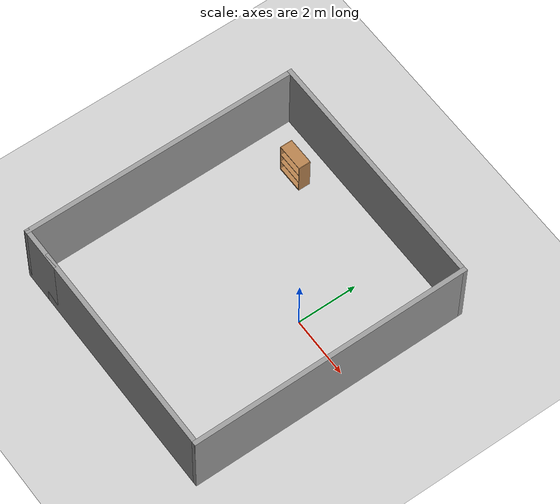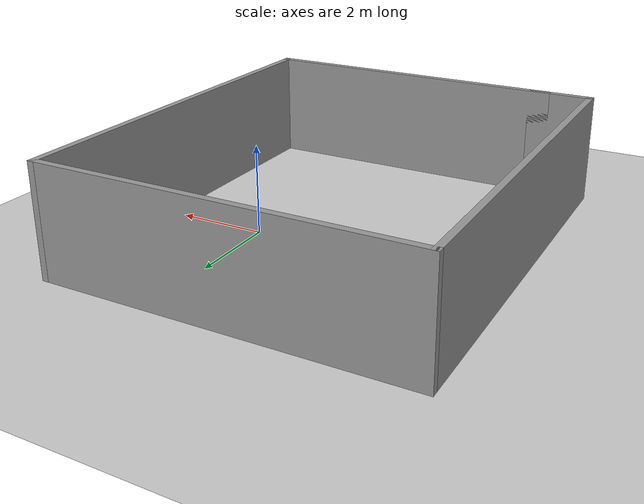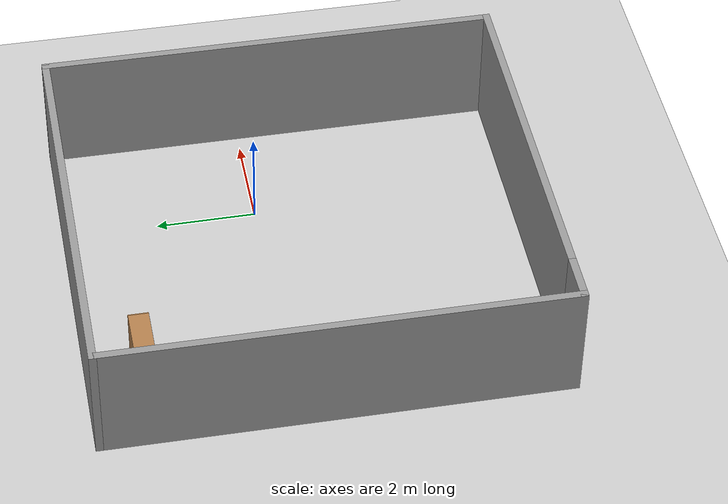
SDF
<sdf version="1.7">
 <world name="default">
  <light name="sun" type="directional">
   <pose>0 0 10 0 -0 0</pose>
   <diffuse>0.8 0.8 0.8 1</diffuse>
   <specular>0.2 0.2 0.2 1</specular>
   <attenuation>
    <range>1000</range>
    <constant>0.9</constant>
    <linear>0.01</linear>
    <quadratic>0.001</quadratic>
   </attenuation>
   <direction>-0.5 0.1 -0.9</direction>
   <spot><inner_angle>0</inner_angle><outer_angle>0</outer_angle><falloff>0</falloff></spot>
  </light>
  <model name="ground_plane">
   <static>1</static>
   <link name="link">
    <collision name="collision">
     <geometry><plane><normal>0 0 1</normal><size>100 100</size></plane></geometry>
     <surface><friction><ode><mu>100</mu><mu2>50</mu2></ode></friction></surface>
    </collision>
    <visual name="visual">
     <cast_shadows>0</cast_shadows>
     <geometry><plane><normal>0 0 1</normal><size>100 100</size></plane></geometry>
     <material>
      <script><uri>file://media/materials/scripts/gazebo.material</uri><name>Gazebo/Grey</name></script>
     </material>
    </visual>
   </link>
  </model>
  <gravity>0 0 -9.8</gravity>
  <magnetic_field>6e-06 2.3e-05 -4.2e-05</magnetic_field>
  <atmosphere type="adiabatic"/>
  <physics type="ode">
   <max_step_size>0.001</max_step_size>
   <real_time_factor>1</real_time_factor>
   <real_time_update_rate>1000</real_time_update_rate>
  </physics>
  <scene><ambient>0.4 0.4 0.4 1</ambient><background>0.7 0.7 0.7 1</background><shadows>1</shadows></scene>
  <audio><device>default</device></audio>
  <spherical_coordinates>
   <surface_model>EARTH_WGS84</surface_model>
   <latitude_deg>0</latitude_deg>
   <longitude_deg>0</longitude_deg>
   <elevation>0</elevation>
   <heading_deg>0</heading_deg>
  </spherical_coordinates>
  <model name="Bookshelf">
   <static>1</static>
   <link name="link">
    <inertial><mass>1</mass></inertial>
    <collision name="back">
     <pose>0 0.005 0.6 0 -0 0</pose>
     <geometry><box><size>0.9 0.01 1.2</size></box></geometry>
    </collision>
    <visual name="visual1">
     <pose>0 0.005 0.6 0 -0 0</pose>
     <geometry><box><size>0.9 0.01 1.2</size></box></geometry>
     <material>
      <diffuse>1 1 1 1</diffuse>
      <script><uri>file://media/materials/scripts/gazebo.material</uri><name>Gazebo/Wood</name></script>
      <pbr><metal><albedo_map>model://Bookshelf/bookshelf_diffuse.jpg</albedo_map></metal></pbr>
     </material>
    </visual>
    <collision name="left_side">
     <pose>0.45 -0.195 0.6 0 -0 0</pose>
     <geometry><box><size>0.02 0.4 1.2</size></box></geometry>
    </collision>
    <visual name="visual2">
     <pose>0.45 -0.195 0.6 0 -0 0</pose>
     <geometry><box><size>0.02 0.4 1.2</size></box></geometry>
     <material>
      <diffuse>1 1 1 1</diffuse>
      <script><uri>file://media/materials/scripts/gazebo.material</uri><name>Gazebo/Wood</name></script>
      <pbr><metal><albedo_map>model://Bookshelf/bookshelf_diffuse.jpg</albedo_map></metal></pbr>
     </material>
    </visual>
    <collision name="right_side">
     <pose>-0.45 -0.195 0.6 0 -0 0</pose>
     <geometry><box><size>0.02 0.4 1.2</size></box></geometry>
    </collision>
    <visual name="visual3">
     <pose>-0.45 -0.195 0.6 0 -0 0</pose>
     <geometry><box><size>0.02 0.4 1.2</size></box></geometry>
     <material>
      <diffuse>1 1 1 1</diffuse>
      <script><uri>file://media/materials/scripts/gazebo.material</uri><name>Gazebo/Wood</name></script>
      <pbr><metal><albedo_map>model://Bookshelf/bookshelf_diffuse.jpg</albedo_map></metal></pbr>
     </material>
    </visual>
    <collision name="bottom">
     <pose>0 -0.195 0.03 0 -0 0</pose>
     <geometry><box><size>0.88 0.4 0.06</size></box></geometry>
    </collision>
    <visual name="visual4">
     <pose>0 -0.195 0.03 0 -0 0</pose>
     <geometry><box><size>0.88 0.4 0.06</size></box></geometry>
     <material>
      <diffuse>1 1 1 1</diffuse>
      <script><uri>file://media/materials/scripts/gazebo.material</uri><name>Gazebo/Wood</name></script>
      <pbr><metal><albedo_map>model://Bookshelf/bookshelf_diffuse.jpg</albedo_map></metal></pbr>
     </material>
    </visual>
    <collision name="top">
     <pose>0 -0.195 1.19 0 -0 0</pose>
     <geometry><box><size>0.88 0.4 0.02</size></box></geometry>
    </collision>
    <visual name="visual5">
     <pose>0 -0.195 1.19 0 -0 0</pose>
     <geometry><box><size>0.88 0.4 0.02</size></box></geometry>
     <material>
      <diffuse>1 1 1 1</diffuse>
      <script><uri>file://media/materials/scripts/gazebo.material</uri><name>Gazebo/Wood</name></script>
      <pbr><metal><albedo_map>model://Bookshelf/bookshelf_diffuse.jpg</albedo_map></metal></pbr>
     </material>
    </visual>
    <collision name="low_shelf">
     <pose>0 -0.195 0.43 0 -0 0</pose>
     <geometry><box><size>0.88 0.4 0.02</size></box></geometry>
    </collision>
    <visual name="visual6">
     <pose>0 -0.195 0.43 0 -0 0</pose>
     <geometry><box><size>0.88 0.4 0.02</size></box></geometry>
     <material>
      <diffuse>1 1 1 1</diffuse>
      <script><uri>file://media/materials/scripts/gazebo.material</uri><name>Gazebo/Wood</name></script>
      <pbr><metal><albedo_map>model://Bookshelf/bookshelf_diffuse.jpg</albedo_map></metal></pbr>
     </material>
    </visual>
    <collision name="high_shelf">
     <pose>0 -0.195 0.8 0 -0 0</pose>
     <geometry><box><size>0.88 0.4 0.02</size></box></geometry>
    </collision>
    <visual name="visual7">
     <pose>0 -0.195 0.8 0 -0 0</pose>
     <geometry><box><size>0.88 0.4 0.02</size></box></geometry>
     <material>
      <diffuse>1 1 1 1</diffuse>
      <script><uri>file://media/materials/scripts/gazebo.material</uri><name>Gazebo/Wood</name></script>
      <pbr><metal><albedo_map>model://Bookshelf/bookshelf_diffuse.jpg</albedo_map></metal></pbr>
     </material>
    </visual>
   </link>
   <pose>-3.98759 2.9885 0 0 -0 0</pose>
  </model>
  <model name="test_0">
   <pose>-1.64062 -0.69905 0 0 -0 0</pose>
   <link name="Wall_10">
    <collision name="Wall_10_Collision">
     <geometry><box><size>9.25 0.15 2.5</size></box></geometry>
     <pose>0 0 1.25 0 -0 0</pose>
    </collision>
    <visual name="Wall_10_Visual">
     <pose>0 0 1.25 0 -0 0</pose>
     <geometry><box><size>9.25 0.15 2.5</size></box></geometry>
     <material>
      <script><uri>file://media/materials/scripts/gazebo.material</uri><name>Gazebo/Grey</name></script>
      <ambient>1 1 1 1</ambient>
     </material>
     <meta><layer>0</layer></meta>
    </visual>
    <pose>-4.05 -0 0 0 -0 -1.5708</pose>
   </link>
   <link name="Wall_11">
    <collision name="Wall_11_Collision">
     <geometry><box><size>1.5 0.15 2.5</size></box></geometry>
     <pose>0 0 1.25 0 -0 0</pose>
    </collision>
    <visual name="Wall_11_Visual">
     <pose>0 0 1.25 0 -0 0</pose>
     <geometry><box><size>1.5 0.15 2.5</size></box></geometry>
     <material>
      <script><uri>file://media/materials/scripts/gazebo.material</uri><name>Gazebo/Grey</name></script>
      <ambient>1 1 1 1</ambient>
     </material>
     <meta><layer>0</layer></meta>
    </visual>
    <pose>-3.375 -4.55 0 0 -0 0</pose>
   </link>
   <link name="Wall_7">
    <collision name="Wall_7_Collision">
     <geometry><box><size>7.25 0.15 2.5</size></box></geometry>
     <pose>0 0 1.25 0 -0 0</pose>
    </collision>
    <visual name="Wall_7_Visual">
     <pose>0 0 1.25 0 -0 0</pose>
     <geometry><box><size>7.25 0.15 2.5</size></box></geometry>
     <material>
      <script><uri>file://media/materials/scripts/gazebo.material</uri><name>Gazebo/Grey</name></script>
      <ambient>1 1 1 1</ambient>
     </material>
     <meta><layer>0</layer></meta>
    </visual>
    <pose>0.5 -4.55 0 0 -0 0</pose>
   </link>
   <link name="Wall_8">
    <collision name="Wall_8_Collision">
     <geometry><box><size>9.25 0.15 2.5</size></box></geometry>
     <pose>0 0 1.25 0 -0 0</pose>
    </collision>
    <visual name="Wall_8_Visual">
     <pose>0 0 1.25 0 -0 0</pose>
     <geometry><box><size>9.25 0.15 2.5</size></box></geometry>
     <material>
      <script><uri>file://media/materials/scripts/gazebo.material</uri><name>Gazebo/Grey</name></script>
      <ambient>1 1 1 1</ambient>
     </material>
     <meta><layer>0</layer></meta>
    </visual>
    <pose>4.05 -0 0 0 -0 1.5708</pose>
   </link>
   <link name="Wall_9">
    <collision name="Wall_9_Collision">
     <geometry><box><size>8.25 0.15 2.5</size></box></geometry>
     <pose>0 0 1.25 0 -0 0</pose>
    </collision>
    <visual name="Wall_9_Visual">
     <pose>0 0 1.25 0 -0 0</pose>
     <geometry><box><size>8.25 0.15 2.5</size></box></geometry>
     <material>
      <script><uri>file://media/materials/scripts/gazebo.material</uri><name>Gazebo/Grey</name></script>
      <ambient>1 1 1 1</ambient>
     </material>
     <meta><layer>0</layer></meta>
    </visual>
    <pose>0 4.55 0 0 -0 3.14159</pose>
   </link>
   <static>1</static>
  </model>
 </world>
</sdf>
